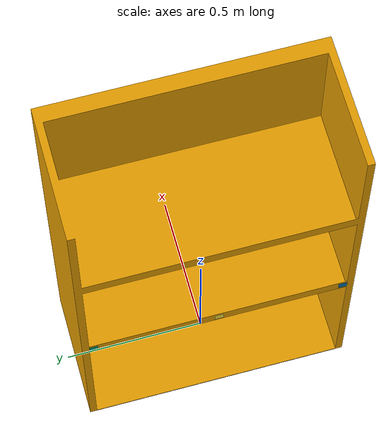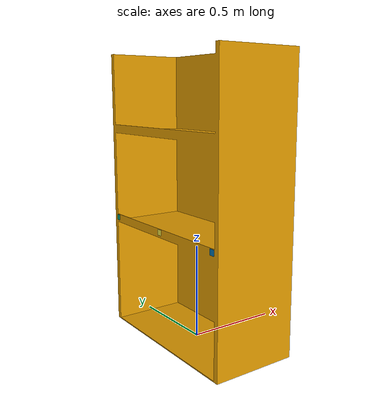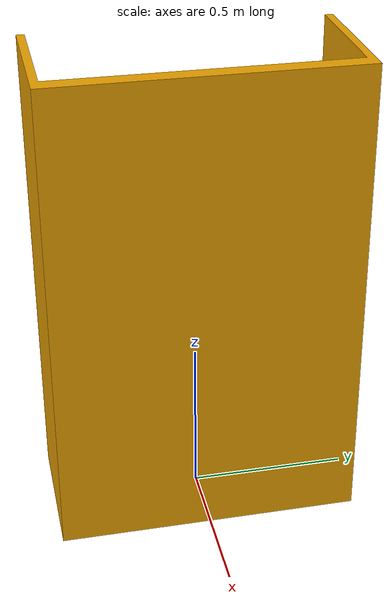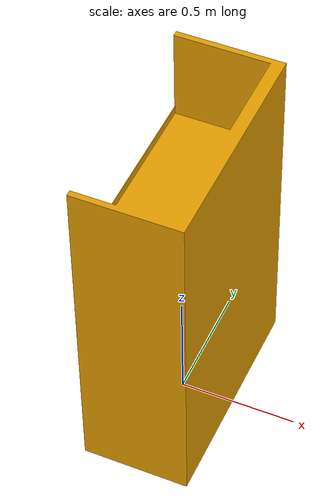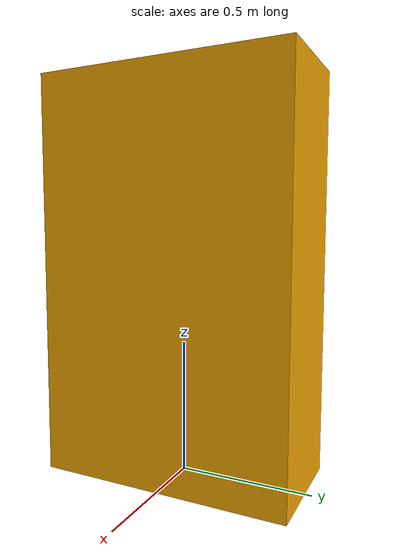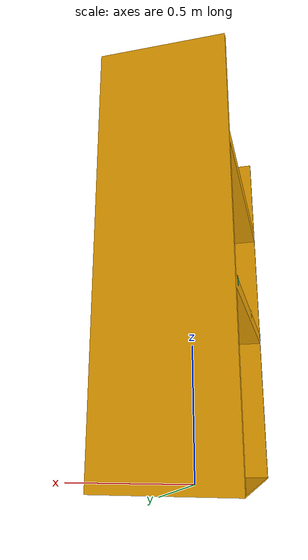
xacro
<?xml version="1.0"?>
<robot xmlns:xacro="http://www.ros.org/wiki/xacro" name="shelf">
  <xacro:arg name="marker_size" default="3"/>
  <xacro:arg name="marker_id" default="40"/>

  <property name="marker_size_p" value="${$(arg marker_size) * 0.01}"/>
  <property name="marker_id_p" value="$(arg marker_id)"/>

  <xacro:macro name="box_inertial" params="mass x y z *origin">
    <inertial>
      <mass value="${mass}" />
      <xacro:insert_block name="origin" />
      <inertia  ixx="${mass*(y*y+z*z)/12}" ixy = "0" ixz = "0"
                iyy="${mass*(x*x+z*z)/12}" iyz = "0"
                izz="${mass*(x*x+y*y)/12}" />
    </inertial>
  </xacro:macro>

  <xacro:macro name="ar_marker" params="ar_marker_id ar_marker_size parent *origin">
    <link name="ar_marker_${ar_marker_id}">
      <xacro:box_inertial mass="0.0000001" x="${ar_marker_size}" y="${ar_marker_size}" z="0.0001">
        <origin xyz="0 0 0" rpy="0 0 1.57" />
      </xacro:box_inertial>
      <collision>
        <origin xyz="0 0 0" rpy="0 0 1.57"/>
        <geometry>
          <box size="${ar_marker_size} ${ar_marker_size} 0.0001"/>
        </geometry>
      </collision>
      <visual>
        <origin xyz="0 0 0" rpy="0 0 1.57"/>
        <geometry>
          <box size="${ar_marker_size} ${ar_marker_size} 0.0001"/>
        </geometry>
        <material name="ar_marker_${ar_marker_id}">
          <texture filename="package://fcsc_description/media/materials/textures/MarkerData_${ar_marker_id}.png"/>
        </material>
      </visual>
    </link>
    <gazebo reference="ar_marker_${ar_marker_id}">
      <material>ar_marker_${ar_marker_id}</material>
    </gazebo>
    <joint name="ar_joint_${ar_marker_id}" type="fixed">
      <parent link="${parent}"/>
      <child link="ar_marker_${ar_marker_id}"/>
      <xacro:insert_block name="origin" />
    </joint>
  </xacro:macro>

  <xacro:macro name="shelf">
    <link name="shelf">
      <inertial>
        <origin xyz="0 0 0"/>
        <mass value="5"/>
        <inertia ixx="1" ixy="0" ixz="0" iyy="1" iyz="0" izz="1"/>
      </inertial>
      <collision>
        <origin xyz="0 0 0"/>
        <geometry>
          <mesh filename="package://fcsc_description/mesh/shelf.stl" scale="1 1 1"/>
        </geometry>
      </collision>
      <visual>
        <origin xyz="0 0 0"/>
        <geometry>
          <mesh filename="package://fcsc_description/mesh/shelf.stl" scale="1 1 1"/>
        </geometry>
      </visual>
    </link>
    <link name="world"/>
    <joint name="fix" type="fixed">
      <parent link="world"/>
      <child link="shelf"/>
      <origin xyz="0 0 0" rpy="0 0 0"/>
    </joint>
  </xacro:macro>

  <xacro:shelf/>
  <xacro:ar_marker ar_marker_id="${marker_id_p}" ar_marker_size="${marker_size_p}" parent="shelf">
    <origin xyz="${-0.2-0.03} ${0.45-marker_size_p/2} ${0.59+(0.035-marker_size_p/2.0)}" rpy="1.57 0 -1.57"/>
  </xacro:ar_marker>
  <xacro:ar_marker ar_marker_id="${marker_id_p+1}" ar_marker_size="${marker_size_p}" parent="shelf">
    <origin xyz="${-0.2-0.03} ${0} ${0.59+(0.035-marker_size_p/2.0)}" rpy="1.57 0 -1.57"/>
  </xacro:ar_marker>
  <xacro:ar_marker ar_marker_id="${marker_id_p+2}" ar_marker_size="${marker_size_p}" parent="shelf">
    <origin xyz="${-0.2-0.03} ${-0.45+marker_size_p/2} ${0.59+(0.035-marker_size_p/2.0)}" rpy="1.57 0 -1.57"/>
  </xacro:ar_marker>
</robot>
